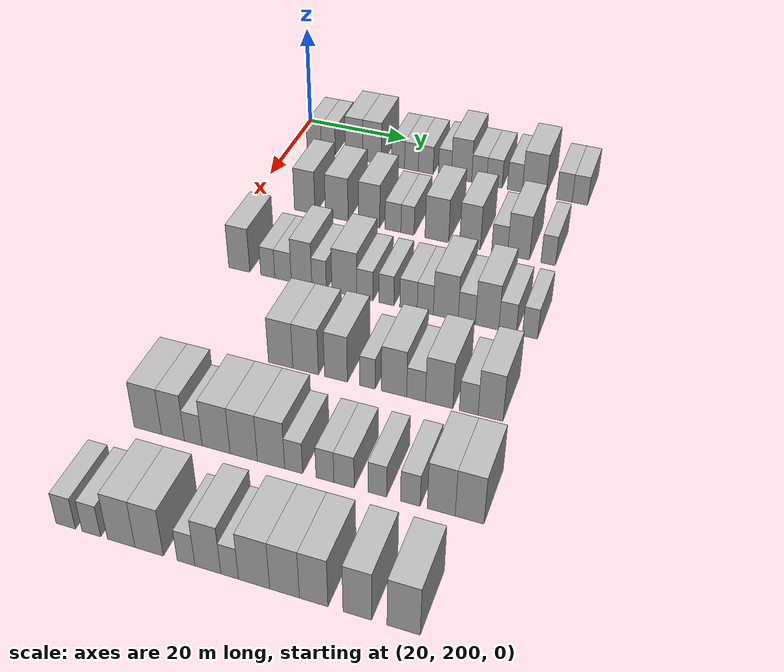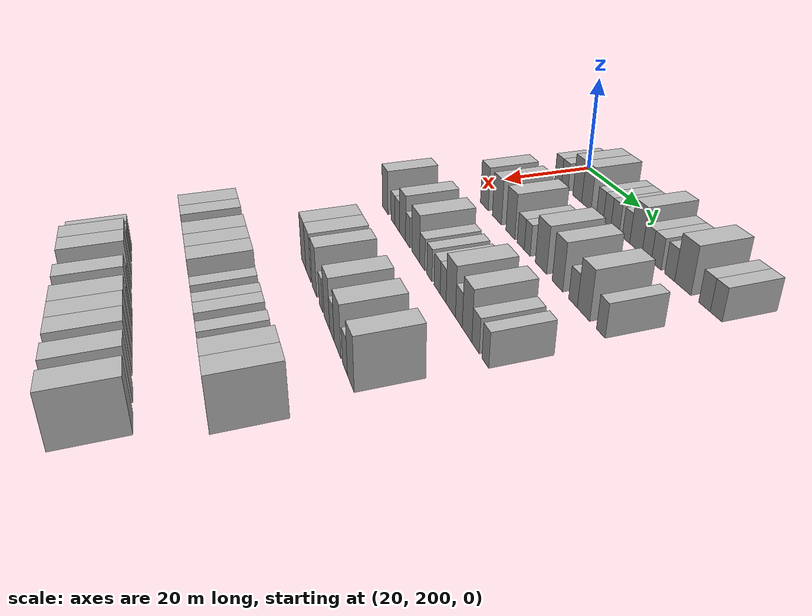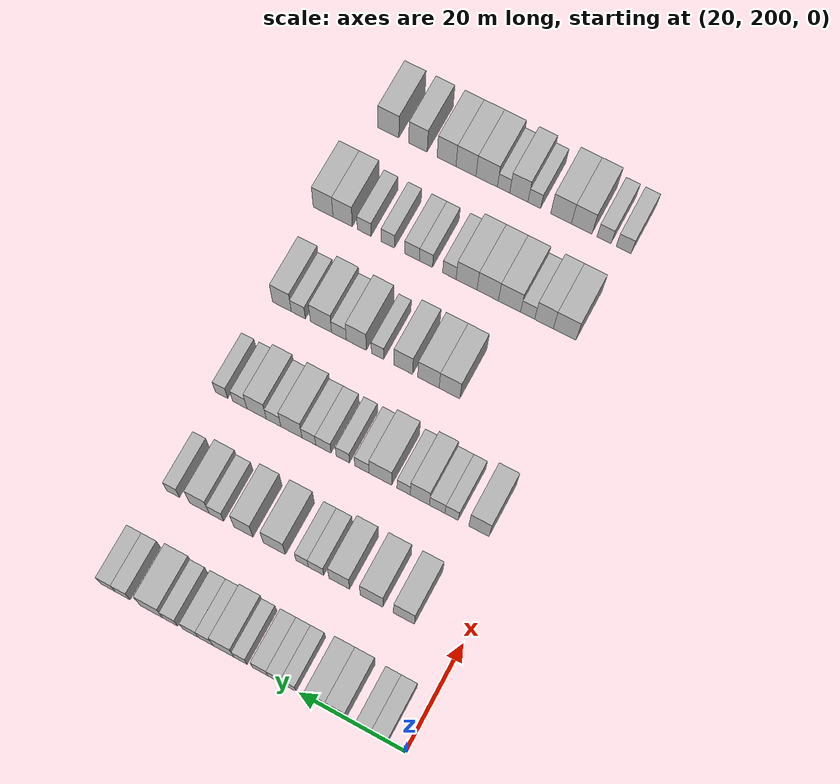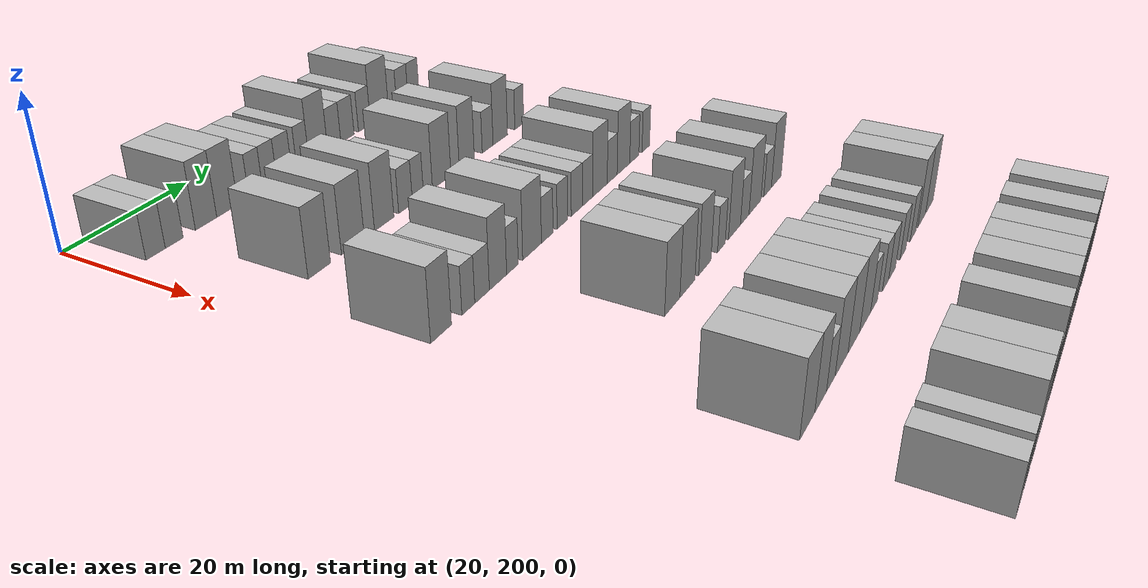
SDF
<sdf version="1.6">
 <world name="default">
  <model name="building_143">
   <static>1</static>
   <pose>25.0000 204.7831 0 0.000000 0.000000 0.000000</pose>
   <link name="link">
    <pose>0 0 3.00 0 0 0</pose>
    <collision name="collision"><geometry><box><size>10.0000 2.9914 6.0000</size></box></geometry></collision>
    <visual name="visual">
     <cast_shadows>0</cast_shadows>
     <geometry><box><size>10.0000 2.9914 6.0000</size></box></geometry>
     <material>
      <script>
       <uri>model://HANNAS_wall/materials/scripts</uri>
       <uri>model://HANNAS_wall/materials/textures</uri>
       <name>vrc/HANNAS_wall</name>
      </script>
     </material>
    </visual>
   </link>
  </model>
  <model name="building_144">
   <static>1</static>
   <pose>25.0000 207.7089 0 0.000000 0.000000 0.000000</pose>
   <link name="link">
    <pose>0 0 3.00 0 0 0</pose>
    <collision name="collision"><geometry><box><size>10.0000 2.8602 6.0000</size></box></geometry></collision>
    <visual name="visual">
     <cast_shadows>0</cast_shadows>
     <geometry><box><size>10.0000 2.8602 6.0000</size></box></geometry>
     <material>
      <script>
       <uri>model://HANNAS_wall/materials/scripts</uri>
       <uri>model://HANNAS_wall/materials/textures</uri>
       <name>vrc/HANNAS_wall</name>
      </script>
     </material>
    </visual>
   </link>
  </model>
  <model name="building_145">
   <static>1</static>
   <pose>25.0000 212.9392 0 0.000000 0.000000 0.000000</pose>
   <link name="link">
    <pose>0 0 4.50 0 0 0</pose>
    <collision name="collision"><geometry><box><size>10.0000 3.6005 9.0000</size></box></geometry></collision>
    <visual name="visual">
     <cast_shadows>0</cast_shadows>
     <geometry><box><size>10.0000 3.6005 9.0000</size></box></geometry>
     <material>
      <script>
       <uri>model://HANNAS_wall/materials/scripts</uri>
       <uri>model://HANNAS_wall/materials/textures</uri>
       <name>vrc/HANNAS_wall</name>
      </script>
     </material>
    </visual>
   </link>
  </model>
  <model name="building_146">
   <static>1</static>
   <pose>25.0000 216.6041 0 0.000000 0.000000 0.000000</pose>
   <link name="link">
    <pose>0 0 4.50 0 0 0</pose>
    <collision name="collision"><geometry><box><size>10.0000 3.7292 9.0000</size></box></geometry></collision>
    <visual name="visual">
     <cast_shadows>0</cast_shadows>
     <geometry><box><size>10.0000 3.7292 9.0000</size></box></geometry>
     <material>
      <script>
       <uri>model://HANNAS_wall/materials/scripts</uri>
       <uri>model://HANNAS_wall/materials/textures</uri>
       <name>vrc/HANNAS_wall</name>
      </script>
     </material>
    </visual>
   </link>
  </model>
  <model name="building_147">
   <static>1</static>
   <pose>25.0000 221.7571 0 0.000000 0.000000 0.000000</pose>
   <link name="link">
    <pose>0 0 3.00 0 0 0</pose>
    <collision name="collision"><geometry><box><size>10.0000 2.5768 6.0000</size></box></geometry></collision>
    <visual name="visual">
     <cast_shadows>0</cast_shadows>
     <geometry><box><size>10.0000 2.5768 6.0000</size></box></geometry>
     <material>
      <script>
       <uri>model://HANNAS_wall/materials/scripts</uri>
       <uri>model://HANNAS_wall/materials/textures</uri>
       <name>vrc/HANNAS_wall</name>
      </script>
     </material>
    </visual>
   </link>
  </model>
  <model name="building_148">
   <static>1</static>
   <pose>25.0000 224.4015 0 0.000000 0.000000 0.000000</pose>
   <link name="link">
    <pose>0 0 3.00 0 0 0</pose>
    <collision name="collision"><geometry><box><size>10.0000 2.7119 6.0000</size></box></geometry></collision>
    <visual name="visual">
     <cast_shadows>0</cast_shadows>
     <geometry><box><size>10.0000 2.7119 6.0000</size></box></geometry>
     <material>
      <script>
       <uri>model://HANNAS_wall/materials/scripts</uri>
       <uri>model://HANNAS_wall/materials/textures</uri>
       <name>vrc/HANNAS_wall</name>
      </script>
     </material>
    </visual>
   </link>
  </model>
  <model name="building_149">
   <static>1</static>
   <pose>25.0000 227.2264 0 0.000000 0.000000 0.000000</pose>
   <link name="link">
    <pose>0 0 3.00 0 0 0</pose>
    <collision name="collision"><geometry><box><size>10.0000 2.9379 6.0000</size></box></geometry></collision>
    <visual name="visual">
     <cast_shadows>0</cast_shadows>
     <geometry><box><size>10.0000 2.9379 6.0000</size></box></geometry>
     <material>
      <script>
       <uri>model://HANNAS_wall/materials/scripts</uri>
       <uri>model://HANNAS_wall/materials/textures</uri>
       <name>vrc/HANNAS_wall</name>
      </script>
     </material>
    </visual>
   </link>
  </model>
  <model name="building_150">
   <static>1</static>
   <pose>25.0000 230.9472 0 0.000000 0.000000 0.000000</pose>
   <link name="link">
    <pose>0 0 3.00 0 0 0</pose>
    <collision name="collision"><geometry><box><size>10.0000 2.5038 6.0000</size></box></geometry></collision>
    <visual name="visual">
     <cast_shadows>0</cast_shadows>
     <geometry><box><size>10.0000 2.5038 6.0000</size></box></geometry>
     <material>
      <script>
       <uri>model://HANNAS_wall/materials/scripts</uri>
       <uri>model://HANNAS_wall/materials/textures</uri>
       <name>vrc/HANNAS_wall</name>
      </script>
     </material>
    </visual>
   </link>
  </model>
  <model name="building_151">
   <static>1</static>
   <pose>25.0000 234.1656 0 0.000000 0.000000 0.000000</pose>
   <link name="link">
    <pose>0 0 4.50 0 0 0</pose>
    <collision name="collision"><geometry><box><size>10.0000 3.9331 9.0000</size></box></geometry></collision>
    <visual name="visual">
     <cast_shadows>0</cast_shadows>
     <geometry><box><size>10.0000 3.9331 9.0000</size></box></geometry>
     <material>
      <script>
       <uri>model://HANNAS_wall/materials/scripts</uri>
       <uri>model://HANNAS_wall/materials/textures</uri>
       <name>vrc/HANNAS_wall</name>
      </script>
     </material>
    </visual>
   </link>
  </model>
  <model name="building_152">
   <static>1</static>
   <pose>25.0000 237.5633 0 0.000000 0.000000 0.000000</pose>
   <link name="link">
    <pose>0 0 3.00 0 0 0</pose>
    <collision name="collision"><geometry><box><size>10.0000 2.8623 6.0000</size></box></geometry></collision>
    <visual name="visual">
     <cast_shadows>0</cast_shadows>
     <geometry><box><size>10.0000 2.8623 6.0000</size></box></geometry>
     <material>
      <script>
       <uri>model://HANNAS_wall/materials/scripts</uri>
       <uri>model://HANNAS_wall/materials/textures</uri>
       <name>vrc/HANNAS_wall</name>
      </script>
     </material>
    </visual>
   </link>
  </model>
  <model name="building_153">
   <static>1</static>
   <pose>25.0000 240.4737 0 0.000000 0.000000 0.000000</pose>
   <link name="link">
    <pose>0 0 3.00 0 0 0</pose>
    <collision name="collision"><geometry><box><size>10.0000 2.9584 6.0000</size></box></geometry></collision>
    <visual name="visual">
     <cast_shadows>0</cast_shadows>
     <geometry><box><size>10.0000 2.9584 6.0000</size></box></geometry>
     <material>
      <script>
       <uri>model://HANNAS_wall/materials/scripts</uri>
       <uri>model://HANNAS_wall/materials/textures</uri>
       <name>vrc/HANNAS_wall</name>
      </script>
     </material>
    </visual>
   </link>
  </model>
  <model name="building_154">
   <static>1</static>
   <pose>25.0000 244.3500 0 0.000000 0.000000 0.000000</pose>
   <link name="link">
    <pose>0 0 3.00 0 0 0</pose>
    <collision name="collision"><geometry><box><size>10.0000 2.7941 6.0000</size></box></geometry></collision>
    <visual name="visual">
     <cast_shadows>0</cast_shadows>
     <geometry><box><size>10.0000 2.7941 6.0000</size></box></geometry>
     <material>
      <script>
       <uri>model://HANNAS_wall/materials/scripts</uri>
       <uri>model://HANNAS_wall/materials/textures</uri>
       <name>vrc/HANNAS_wall</name>
      </script>
     </material>
    </visual>
   </link>
  </model>
  <model name="building_155">
   <static>1</static>
   <pose>25.0000 247.9475 0 0.000000 0.000000 0.000000</pose>
   <link name="link">
    <pose>0 0 4.50 0 0 0</pose>
    <collision name="collision"><geometry><box><size>10.0000 4.4011 9.0000</size></box></geometry></collision>
    <visual name="visual">
     <cast_shadows>0</cast_shadows>
     <geometry><box><size>10.0000 4.4011 9.0000</size></box></geometry>
     <material>
      <script>
       <uri>model://HANNAS_wall/materials/scripts</uri>
       <uri>model://HANNAS_wall/materials/textures</uri>
       <name>vrc/HANNAS_wall</name>
      </script>
     </material>
    </visual>
   </link>
  </model>
  <model name="building_156">
   <static>1</static>
   <pose>25.0000 253.5833 0 0.000000 0.000000 0.000000</pose>
   <link name="link">
    <pose>0 0 3.00 0 0 0</pose>
    <collision name="collision"><geometry><box><size>10.0000 2.8704 6.0000</size></box></geometry></collision>
    <visual name="visual">
     <cast_shadows>0</cast_shadows>
     <geometry><box><size>10.0000 2.8704 6.0000</size></box></geometry>
     <material>
      <script>
       <uri>model://HANNAS_wall/materials/scripts</uri>
       <uri>model://HANNAS_wall/materials/textures</uri>
       <name>vrc/HANNAS_wall</name>
      </script>
     </material>
    </visual>
   </link>
  </model>
  <model name="building_157">
   <static>1</static>
   <pose>25.0000 256.4415 0 0.000000 0.000000 0.000000</pose>
   <link name="link">
    <pose>0 0 3.00 0 0 0</pose>
    <collision name="collision"><geometry><box><size>10.0000 2.8461 6.0000</size></box></geometry></collision>
    <visual name="visual">
     <cast_shadows>0</cast_shadows>
     <geometry><box><size>10.0000 2.8461 6.0000</size></box></geometry>
     <material>
      <script>
       <uri>model://HANNAS_wall/materials/scripts</uri>
       <uri>model://HANNAS_wall/materials/textures</uri>
       <name>vrc/HANNAS_wall</name>
      </script>
     </material>
    </visual>
   </link>
  </model>
  <model name="building_310">
   <static>1</static>
   <pose>44.0000 210.5807 0 0.000000 0.000000 0.000000</pose>
   <link name="link">
    <pose>0 0 4.50 0 0 0</pose>
    <collision name="collision"><geometry><box><size>10.0000 3.9617 9.0000</size></box></geometry></collision>
    <visual name="visual">
     <cast_shadows>0</cast_shadows>
     <geometry><box><size>10.0000 3.9617 9.0000</size></box></geometry>
     <material>
      <script>
       <uri>model://HANNAS_wall/materials/scripts</uri>
       <uri>model://HANNAS_wall/materials/textures</uri>
       <name>vrc/HANNAS_wall</name>
      </script>
     </material>
    </visual>
   </link>
  </model>
  <model name="building_311">
   <static>1</static>
   <pose>44.0000 216.7143 0 0.000000 0.000000 0.000000</pose>
   <link name="link">
    <pose>0 0 4.50 0 0 0</pose>
    <collision name="collision"><geometry><box><size>10.0000 4.3055 9.0000</size></box></geometry></collision>
    <visual name="visual">
     <cast_shadows>0</cast_shadows>
     <geometry><box><size>10.0000 4.3055 9.0000</size></box></geometry>
     <material>
      <script>
       <uri>model://HANNAS_wall/materials/scripts</uri>
       <uri>model://HANNAS_wall/materials/textures</uri>
       <name>vrc/HANNAS_wall</name>
      </script>
     </material>
    </visual>
   </link>
  </model>
  <model name="building_312">
   <static>1</static>
   <pose>44.0000 222.8371 0 0.000000 0.000000 0.000000</pose>
   <link name="link">
    <pose>0 0 4.50 0 0 0</pose>
    <collision name="collision"><geometry><box><size>10.0000 3.9399 9.0000</size></box></geometry></collision>
    <visual name="visual">
     <cast_shadows>0</cast_shadows>
     <geometry><box><size>10.0000 3.9399 9.0000</size></box></geometry>
     <material>
      <script>
       <uri>model://HANNAS_wall/materials/scripts</uri>
       <uri>model://HANNAS_wall/materials/textures</uri>
       <name>vrc/HANNAS_wall</name>
      </script>
     </material>
    </visual>
   </link>
  </model>
  <model name="building_313">
   <static>1</static>
   <pose>44.0000 227.2735 0 0.000000 0.000000 0.000000</pose>
   <link name="link">
    <pose>0 0 3.00 0 0 0</pose>
    <collision name="collision"><geometry><box><size>10.0000 2.9330 6.0000</size></box></geometry></collision>
    <visual name="visual">
     <cast_shadows>0</cast_shadows>
     <geometry><box><size>10.0000 2.9330 6.0000</size></box></geometry>
     <material>
      <script>
       <uri>model://HANNAS_wall/materials/scripts</uri>
       <uri>model://HANNAS_wall/materials/textures</uri>
       <name>vrc/HANNAS_wall</name>
      </script>
     </material>
    </visual>
   </link>
  </model>
  <model name="building_314">
   <static>1</static>
   <pose>44.0000 229.9479 0 0.000000 0.000000 0.000000</pose>
   <link name="link">
    <pose>0 0 3.00 0 0 0</pose>
    <collision name="collision"><geometry><box><size>10.0000 2.4158 6.0000</size></box></geometry></collision>
    <visual name="visual">
     <cast_shadows>0</cast_shadows>
     <geometry><box><size>10.0000 2.4158 6.0000</size></box></geometry>
     <material>
      <script>
       <uri>model://HANNAS_wall/materials/scripts</uri>
       <uri>model://HANNAS_wall/materials/textures</uri>
       <name>vrc/HANNAS_wall</name>
      </script>
     </material>
    </visual>
   </link>
  </model>
  <model name="building_315">
   <static>1</static>
   <pose>44.0000 235.2914 0 0.000000 0.000000 0.000000</pose>
   <link name="link">
    <pose>0 0 4.50 0 0 0</pose>
    <collision name="collision"><geometry><box><size>10.0000 4.2712 9.0000</size></box></geometry></collision>
    <visual name="visual">
     <cast_shadows>0</cast_shadows>
     <geometry><box><size>10.0000 4.2712 9.0000</size></box></geometry>
     <material>
      <script>
       <uri>model://HANNAS_wall/materials/scripts</uri>
       <uri>model://HANNAS_wall/materials/textures</uri>
       <name>vrc/HANNAS_wall</name>
      </script>
     </material>
    </visual>
   </link>
  </model>
  <model name="building_316">
   <static>1</static>
   <pose>44.0000 241.2752 0 0.000000 0.000000 0.000000</pose>
   <link name="link">
    <pose>0 0 4.50 0 0 0</pose>
    <collision name="collision"><geometry><box><size>10.0000 3.6962 9.0000</size></box></geometry></collision>
    <visual name="visual">
     <cast_shadows>0</cast_shadows>
     <geometry><box><size>10.0000 3.6962 9.0000</size></box></geometry>
     <material>
      <script>
       <uri>model://HANNAS_wall/materials/scripts</uri>
       <uri>model://HANNAS_wall/materials/textures</uri>
       <name>vrc/HANNAS_wall</name>
      </script>
     </material>
    </visual>
   </link>
  </model>
  <model name="building_317">
   <static>1</static>
   <pose>44.0000 246.5233 0 0.000000 0.000000 0.000000</pose>
   <link name="link">
    <pose>0 0 3.00 0 0 0</pose>
    <collision name="collision"><geometry><box><size>10.0000 2.8000 6.0000</size></box></geometry></collision>
    <visual name="visual">
     <cast_shadows>0</cast_shadows>
     <geometry><box><size>10.0000 2.8000 6.0000</size></box></geometry>
     <material>
      <script>
       <uri>model://HANNAS_wall/materials/scripts</uri>
       <uri>model://HANNAS_wall/materials/textures</uri>
       <name>vrc/HANNAS_wall</name>
      </script>
     </material>
    </visual>
   </link>
  </model>
  <model name="building_318">
   <static>1</static>
   <pose>44.0000 249.8482 0 0.000000 0.000000 0.000000</pose>
   <link name="link">
    <pose>0 0 4.50 0 0 0</pose>
    <collision name="collision"><geometry><box><size>10.0000 3.8499 9.0000</size></box></geometry></collision>
    <visual name="visual">
     <cast_shadows>0</cast_shadows>
     <geometry><box><size>10.0000 3.8499 9.0000</size></box></geometry>
     <material>
      <script>
       <uri>model://HANNAS_wall/materials/scripts</uri>
       <uri>model://HANNAS_wall/materials/textures</uri>
       <name>vrc/HANNAS_wall</name>
      </script>
     </material>
    </visual>
   </link>
  </model>
  <model name="building_319">
   <static>1</static>
   <pose>44.0000 255.0269 0 0.000000 0.000000 0.000000</pose>
   <link name="link">
    <pose>0 0 3.00 0 0 0</pose>
    <collision name="collision"><geometry><box><size>10.0000 2.5075 6.0000</size></box></geometry></collision>
    <visual name="visual">
     <cast_shadows>0</cast_shadows>
     <geometry><box><size>10.0000 2.5075 6.0000</size></box></geometry>
     <material>
      <script>
       <uri>model://HANNAS_wall/materials/scripts</uri>
       <uri>model://HANNAS_wall/materials/textures</uri>
       <name>vrc/HANNAS_wall</name>
      </script>
     </material>
    </visual>
   </link>
  </model>
  <model name="building_477">
   <static>1</static>
   <pose>63.0000 206.4645 0 0.000000 0.000000 0.000000</pose>
   <link name="link">
    <pose>0 0 4.50 0 0 0</pose>
    <collision name="collision"><geometry><box><size>10.0000 3.8631 9.0000</size></box></geometry></collision>
    <visual name="visual">
     <cast_shadows>0</cast_shadows>
     <geometry><box><size>10.0000 3.8631 9.0000</size></box></geometry>
     <material>
      <script>
       <uri>model://HANNAS_wall/materials/scripts</uri>
       <uri>model://HANNAS_wall/materials/textures</uri>
       <name>vrc/HANNAS_wall</name>
      </script>
     </material>
    </visual>
   </link>
  </model>
  <model name="building_478">
   <static>1</static>
   <pose>63.0000 211.6756 0 0.000000 0.000000 0.000000</pose>
   <link name="link">
    <pose>0 0 3.00 0 0 0</pose>
    <collision name="collision"><geometry><box><size>10.0000 2.5592 6.0000</size></box></geometry></collision>
    <visual name="visual">
     <cast_shadows>0</cast_shadows>
     <geometry><box><size>10.0000 2.5592 6.0000</size></box></geometry>
     <material>
      <script>
       <uri>model://HANNAS_wall/materials/scripts</uri>
       <uri>model://HANNAS_wall/materials/textures</uri>
       <name>vrc/HANNAS_wall</name>
      </script>
     </material>
    </visual>
   </link>
  </model>
  <model name="building_479">
   <static>1</static>
   <pose>63.0000 214.4435 0 0.000000 0.000000 0.000000</pose>
   <link name="link">
    <pose>0 0 3.00 0 0 0</pose>
    <collision name="collision"><geometry><box><size>10.0000 2.9765 6.0000</size></box></geometry></collision>
    <visual name="visual">
     <cast_shadows>0</cast_shadows>
     <geometry><box><size>10.0000 2.9765 6.0000</size></box></geometry>
     <material>
      <script>
       <uri>model://HANNAS_wall/materials/scripts</uri>
       <uri>model://HANNAS_wall/materials/textures</uri>
       <name>vrc/HANNAS_wall</name>
      </script>
     </material>
    </visual>
   </link>
  </model>
  <model name="building_480">
   <static>1</static>
   <pose>63.0000 217.7690 0 0.000000 0.000000 0.000000</pose>
   <link name="link">
    <pose>0 0 4.50 0 0 0</pose>
    <collision name="collision"><geometry><box><size>10.0000 3.6745 9.0000</size></box></geometry></collision>
    <visual name="visual">
     <cast_shadows>0</cast_shadows>
     <geometry><box><size>10.0000 3.6745 9.0000</size></box></geometry>
     <material>
      <script>
       <uri>model://HANNAS_wall/materials/scripts</uri>
       <uri>model://HANNAS_wall/materials/textures</uri>
       <name>vrc/HANNAS_wall</name>
      </script>
     </material>
    </visual>
   </link>
  </model>
  <model name="building_481">
   <static>1</static>
   <pose>63.0000 220.8858 0 0.000000 0.000000 0.000000</pose>
   <link name="link">
    <pose>0 0 3.00 0 0 0</pose>
    <collision name="collision"><geometry><box><size>10.0000 2.5591 6.0000</size></box></geometry></collision>
    <visual name="visual">
     <cast_shadows>0</cast_shadows>
     <geometry><box><size>10.0000 2.5591 6.0000</size></box></geometry>
     <material>
      <script>
       <uri>model://HANNAS_wall/materials/scripts</uri>
       <uri>model://HANNAS_wall/materials/textures</uri>
       <name>vrc/HANNAS_wall</name>
      </script>
     </material>
    </visual>
   </link>
  </model>
  <model name="building_482">
   <static>1</static>
   <pose>63.0000 225.3421 0 0.000000 0.000000 0.000000</pose>
   <link name="link">
    <pose>0 0 4.50 0 0 0</pose>
    <collision name="collision"><geometry><box><size>10.0000 4.3535 9.0000</size></box></geometry></collision>
    <visual name="visual">
     <cast_shadows>0</cast_shadows>
     <geometry><box><size>10.0000 4.3535 9.0000</size></box></geometry>
     <material>
      <script>
       <uri>model://HANNAS_wall/materials/scripts</uri>
       <uri>model://HANNAS_wall/materials/textures</uri>
       <name>vrc/HANNAS_wall</name>
      </script>
     </material>
    </visual>
   </link>
  </model>
  <model name="building_483">
   <static>1</static>
   <pose>63.0000 228.9276 0 0.000000 0.000000 0.000000</pose>
   <link name="link">
    <pose>0 0 3.00 0 0 0</pose>
    <collision name="collision"><geometry><box><size>10.0000 2.8176 6.0000</size></box></geometry></collision>
    <visual name="visual">
     <cast_shadows>0</cast_shadows>
     <geometry><box><size>10.0000 2.8176 6.0000</size></box></geometry>
     <material>
      <script>
       <uri>model://HANNAS_wall/materials/scripts</uri>
       <uri>model://HANNAS_wall/materials/textures</uri>
       <name>vrc/HANNAS_wall</name>
      </script>
     </material>
    </visual>
   </link>
  </model>
  <model name="building_484">
   <static>1</static>
   <pose>63.0000 232.6369 0 0.000000 0.000000 0.000000</pose>
   <link name="link">
    <pose>0 0 3.00 0 0 0</pose>
    <collision name="collision"><geometry><box><size>10.0000 2.6011 6.0000</size></box></geometry></collision>
    <visual name="visual">
     <cast_shadows>0</cast_shadows>
     <geometry><box><size>10.0000 2.6011 6.0000</size></box></geometry>
     <material>
      <script>
       <uri>model://HANNAS_wall/materials/scripts</uri>
       <uri>model://HANNAS_wall/materials/textures</uri>
       <name>vrc/HANNAS_wall</name>
      </script>
     </material>
    </visual>
   </link>
  </model>
  <model name="building_485">
   <static>1</static>
   <pose>63.0000 236.4139 0 0.000000 0.000000 0.000000</pose>
   <link name="link">
    <pose>0 0 3.00 0 0 0</pose>
    <collision name="collision"><geometry><box><size>10.0000 2.9527 6.0000</size></box></geometry></collision>
    <visual name="visual">
     <cast_shadows>0</cast_shadows>
     <geometry><box><size>10.0000 2.9527 6.0000</size></box></geometry>
     <material>
      <script>
       <uri>model://HANNAS_wall/materials/scripts</uri>
       <uri>model://HANNAS_wall/materials/textures</uri>
       <name>vrc/HANNAS_wall</name>
      </script>
     </material>
    </visual>
   </link>
  </model>
  <model name="building_486">
   <static>1</static>
   <pose>63.0000 239.2537 0 0.000000 0.000000 0.000000</pose>
   <link name="link">
    <pose>0 0 3.00 0 0 0</pose>
    <collision name="collision"><geometry><box><size>10.0000 2.7270 6.0000</size></box></geometry></collision>
    <visual name="visual">
     <cast_shadows>0</cast_shadows>
     <geometry><box><size>10.0000 2.7270 6.0000</size></box></geometry>
     <material>
      <script>
       <uri>model://HANNAS_wall/materials/scripts</uri>
       <uri>model://HANNAS_wall/materials/textures</uri>
       <name>vrc/HANNAS_wall</name>
      </script>
     </material>
    </visual>
   </link>
  </model>
  <model name="building_487">
   <static>1</static>
   <pose>63.0000 242.6885 0 0.000000 0.000000 0.000000</pose>
   <link name="link">
    <pose>0 0 4.50 0 0 0</pose>
    <collision name="collision"><geometry><box><size>10.0000 4.1425 9.0000</size></box></geometry></collision>
    <visual name="visual">
     <cast_shadows>0</cast_shadows>
     <geometry><box><size>10.0000 4.1425 9.0000</size></box></geometry>
     <material>
      <script>
       <uri>model://HANNAS_wall/materials/scripts</uri>
       <uri>model://HANNAS_wall/materials/textures</uri>
       <name>vrc/HANNAS_wall</name>
      </script>
     </material>
    </visual>
   </link>
  </model>
  <model name="building_488">
   <static>1</static>
   <pose>63.0000 246.1956 0 0.000000 0.000000 0.000000</pose>
   <link name="link">
    <pose>0 0 3.00 0 0 0</pose>
    <collision name="collision"><geometry><box><size>10.0000 2.8716 6.0000</size></box></geometry></collision>
    <visual name="visual">
     <cast_shadows>0</cast_shadows>
     <geometry><box><size>10.0000 2.8716 6.0000</size></box></geometry>
     <material>
      <script>
       <uri>model://HANNAS_wall/materials/scripts</uri>
       <uri>model://HANNAS_wall/materials/textures</uri>
       <name>vrc/HANNAS_wall</name>
      </script>
     </material>
    </visual>
   </link>
  </model>
  <model name="building_489">
   <static>1</static>
   <pose>63.0000 249.5432 0 0.000000 0.000000 0.000000</pose>
   <link name="link">
    <pose>0 0 4.50 0 0 0</pose>
    <collision name="collision"><geometry><box><size>10.0000 3.8236 9.0000</size></box></geometry></collision>
    <visual name="visual">
     <cast_shadows>0</cast_shadows>
     <geometry><box><size>10.0000 3.8236 9.0000</size></box></geometry>
     <material>
      <script>
       <uri>model://HANNAS_wall/materials/scripts</uri>
       <uri>model://HANNAS_wall/materials/textures</uri>
       <name>vrc/HANNAS_wall</name>
      </script>
     </material>
    </visual>
   </link>
  </model>
  <model name="building_490">
   <static>1</static>
   <pose>63.0000 252.8727 0 0.000000 0.000000 0.000000</pose>
   <link name="link">
    <pose>0 0 3.00 0 0 0</pose>
    <collision name="collision"><geometry><box><size>10.0000 2.8355 6.0000</size></box></geometry></collision>
    <visual name="visual">
     <cast_shadows>0</cast_shadows>
     <geometry><box><size>10.0000 2.8355 6.0000</size></box></geometry>
     <material>
      <script>
       <uri>model://HANNAS_wall/materials/scripts</uri>
       <uri>model://HANNAS_wall/materials/textures</uri>
       <name>vrc/HANNAS_wall</name>
      </script>
     </material>
    </visual>
   </link>
  </model>
  <model name="building_491">
   <static>1</static>
   <pose>63.0000 256.5139 0 0.000000 0.000000 0.000000</pose>
   <link name="link">
    <pose>0 0 3.00 0 0 0</pose>
    <collision name="collision"><geometry><box><size>10.0000 2.4469 6.0000</size></box></geometry></collision>
    <visual name="visual">
     <cast_shadows>0</cast_shadows>
     <geometry><box><size>10.0000 2.4469 6.0000</size></box></geometry>
     <material>
      <script>
       <uri>model://HANNAS_wall/materials/scripts</uri>
       <uri>model://HANNAS_wall/materials/textures</uri>
       <name>vrc/HANNAS_wall</name>
      </script>
     </material>
    </visual>
   </link>
  </model>
  <model name="building_658">
   <static>1</static>
   <pose>82.0000 222.1262 0 0.000000 0.000000 0.000000</pose>
   <link name="link">
    <pose>0 0 4.50 0 0 0</pose>
    <collision name="collision"><geometry><box><size>10.0000 4.0502 9.0000</size></box></geometry></collision>
    <visual name="visual">
     <cast_shadows>0</cast_shadows>
     <geometry><box><size>10.0000 4.0502 9.0000</size></box></geometry>
     <material>
      <script>
       <uri>model://HANNAS_wall/materials/scripts</uri>
       <uri>model://HANNAS_wall/materials/textures</uri>
       <name>vrc/HANNAS_wall</name>
      </script>
     </material>
    </visual>
   </link>
  </model>
  <model name="building_659">
   <static>1</static>
   <pose>82.0000 226.2478 0 0.000000 0.000000 0.000000</pose>
   <link name="link">
    <pose>0 0 4.50 0 0 0</pose>
    <collision name="collision"><geometry><box><size>10.0000 4.1930 9.0000</size></box></geometry></collision>
    <visual name="visual">
     <cast_shadows>0</cast_shadows>
     <geometry><box><size>10.0000 4.1930 9.0000</size></box></geometry>
     <material>
      <script>
       <uri>model://HANNAS_wall/materials/scripts</uri>
       <uri>model://HANNAS_wall/materials/textures</uri>
       <name>vrc/HANNAS_wall</name>
      </script>
     </material>
    </visual>
   </link>
  </model>
  <model name="building_660">
   <static>1</static>
   <pose>82.0000 231.1861 0 0.000000 0.000000 0.000000</pose>
   <link name="link">
    <pose>0 0 4.50 0 0 0</pose>
    <collision name="collision"><geometry><box><size>10.0000 3.6836 9.0000</size></box></geometry></collision>
    <visual name="visual">
     <cast_shadows>0</cast_shadows>
     <geometry><box><size>10.0000 3.6836 9.0000</size></box></geometry>
     <material>
      <script>
       <uri>model://HANNAS_wall/materials/scripts</uri>
       <uri>model://HANNAS_wall/materials/textures</uri>
       <name>vrc/HANNAS_wall</name>
      </script>
     </material>
    </visual>
   </link>
  </model>
  <model name="building_661">
   <static>1</static>
   <pose>82.0000 236.2423 0 0.000000 0.000000 0.000000</pose>
   <link name="link">
    <pose>0 0 3.00 0 0 0</pose>
    <collision name="collision"><geometry><box><size>10.0000 2.4288 6.0000</size></box></geometry></collision>
    <visual name="visual">
     <cast_shadows>0</cast_shadows>
     <geometry><box><size>10.0000 2.4288 6.0000</size></box></geometry>
     <material>
      <script>
       <uri>model://HANNAS_wall/materials/scripts</uri>
       <uri>model://HANNAS_wall/materials/textures</uri>
       <name>vrc/HANNAS_wall</name>
      </script>
     </material>
    </visual>
   </link>
  </model>
  <model name="building_662">
   <static>1</static>
   <pose>82.0000 240.4374 0 0.000000 0.000000 0.000000</pose>
   <link name="link">
    <pose>0 0 4.50 0 0 0</pose>
    <collision name="collision"><geometry><box><size>10.0000 3.9615 9.0000</size></box></geometry></collision>
    <visual name="visual">
     <cast_shadows>0</cast_shadows>
     <geometry><box><size>10.0000 3.9615 9.0000</size></box></geometry>
     <material>
      <script>
       <uri>model://HANNAS_wall/materials/scripts</uri>
       <uri>model://HANNAS_wall/materials/textures</uri>
       <name>vrc/HANNAS_wall</name>
      </script>
     </material>
    </visual>
   </link>
  </model>
  <model name="building_663">
   <static>1</static>
   <pose>82.0000 243.8828 0 0.000000 0.000000 0.000000</pose>
   <link name="link">
    <pose>0 0 3.00 0 0 0</pose>
    <collision name="collision"><geometry><box><size>10.0000 2.9294 6.0000</size></box></geometry></collision>
    <visual name="visual">
     <cast_shadows>0</cast_shadows>
     <geometry><box><size>10.0000 2.9294 6.0000</size></box></geometry>
     <material>
      <script>
       <uri>model://HANNAS_wall/materials/scripts</uri>
       <uri>model://HANNAS_wall/materials/textures</uri>
       <name>vrc/HANNAS_wall</name>
      </script>
     </material>
    </visual>
   </link>
  </model>
  <model name="building_664">
   <static>1</static>
   <pose>82.0000 247.4565 0 0.000000 0.000000 0.000000</pose>
   <link name="link">
    <pose>0 0 4.50 0 0 0</pose>
    <collision name="collision"><geometry><box><size>10.0000 4.2179 9.0000</size></box></geometry></collision>
    <visual name="visual">
     <cast_shadows>0</cast_shadows>
     <geometry><box><size>10.0000 4.2179 9.0000</size></box></geometry>
     <material>
      <script>
       <uri>model://HANNAS_wall/materials/scripts</uri>
       <uri>model://HANNAS_wall/materials/textures</uri>
       <name>vrc/HANNAS_wall</name>
      </script>
     </material>
    </visual>
   </link>
  </model>
  <model name="building_665">
   <static>1</static>
   <pose>82.0000 251.9847 0 0.000000 0.000000 0.000000</pose>
   <link name="link">
    <pose>0 0 3.00 0 0 0</pose>
    <collision name="collision"><geometry><box><size>10.0000 2.8387 6.0000</size></box></geometry></collision>
    <visual name="visual">
     <cast_shadows>0</cast_shadows>
     <geometry><box><size>10.0000 2.8387 6.0000</size></box></geometry>
     <material>
      <script>
       <uri>model://HANNAS_wall/materials/scripts</uri>
       <uri>model://HANNAS_wall/materials/textures</uri>
       <name>vrc/HANNAS_wall</name>
      </script>
     </material>
    </visual>
   </link>
  </model>
  <model name="building_666">
   <static>1</static>
   <pose>82.0000 255.2847 0 0.000000 0.000000 0.000000</pose>
   <link name="link">
    <pose>0 0 4.50 0 0 0</pose>
    <collision name="collision"><geometry><box><size>10.0000 3.7613 9.0000</size></box></geometry></collision>
    <visual name="visual">
     <cast_shadows>0</cast_shadows>
     <geometry><box><size>10.0000 3.7613 9.0000</size></box></geometry>
     <material>
      <script>
       <uri>model://HANNAS_wall/materials/scripts</uri>
       <uri>model://HANNAS_wall/materials/textures</uri>
       <name>vrc/HANNAS_wall</name>
      </script>
     </material>
    </visual>
   </link>
  </model>
  <model name="building_827">
   <static>1</static>
   <pose>101.0000 209.4870 0 0.000000 0.000000 0.000000</pose>
   <link name="link">
    <pose>0 0 4.50 0 0 0</pose>
    <collision name="collision"><geometry><box><size>10.0000 4.4183 9.0000</size></box></geometry></collision>
    <visual name="visual">
     <cast_shadows>0</cast_shadows>
     <geometry><box><size>10.0000 4.4183 9.0000</size></box></geometry>
     <material>
      <script>
       <uri>model://HANNAS_wall/materials/scripts</uri>
       <uri>model://HANNAS_wall/materials/textures</uri>
       <name>vrc/HANNAS_wall</name>
      </script>
     </material>
    </visual>
   </link>
  </model>
  <model name="building_828">
   <static>1</static>
   <pose>101.0000 213.5177 0 0.000000 0.000000 0.000000</pose>
   <link name="link">
    <pose>0 0 4.50 0 0 0</pose>
    <collision name="collision"><geometry><box><size>10.0000 3.6430 9.0000</size></box></geometry></collision>
    <visual name="visual">
     <cast_shadows>0</cast_shadows>
     <geometry><box><size>10.0000 3.6430 9.0000</size></box></geometry>
     <material>
      <script>
       <uri>model://HANNAS_wall/materials/scripts</uri>
       <uri>model://HANNAS_wall/materials/textures</uri>
       <name>vrc/HANNAS_wall</name>
      </script>
     </material>
    </visual>
   </link>
  </model>
  <model name="building_829">
   <static>1</static>
   <pose>101.0000 216.7320 0 0.000000 0.000000 0.000000</pose>
   <link name="link">
    <pose>0 0 3.00 0 0 0</pose>
    <collision name="collision"><geometry><box><size>10.0000 2.7856 6.0000</size></box></geometry></collision>
    <visual name="visual">
     <cast_shadows>0</cast_shadows>
     <geometry><box><size>10.0000 2.7856 6.0000</size></box></geometry>
     <material>
      <script>
       <uri>model://HANNAS_wall/materials/scripts</uri>
       <uri>model://HANNAS_wall/materials/textures</uri>
       <name>vrc/HANNAS_wall</name>
      </script>
     </material>
    </visual>
   </link>
  </model>
  <model name="building_830">
   <static>1</static>
   <pose>101.0000 220.3071 0 0.000000 0.000000 0.000000</pose>
   <link name="link">
    <pose>0 0 4.50 0 0 0</pose>
    <collision name="collision"><geometry><box><size>10.0000 4.3645 9.0000</size></box></geometry></collision>
    <visual name="visual">
     <cast_shadows>0</cast_shadows>
     <geometry><box><size>10.0000 4.3645 9.0000</size></box></geometry>
     <material>
      <script>
       <uri>model://HANNAS_wall/materials/scripts</uri>
       <uri>model://HANNAS_wall/materials/textures</uri>
       <name>vrc/HANNAS_wall</name>
      </script>
     </material>
    </visual>
   </link>
  </model>
  <model name="building_831">
   <static>1</static>
   <pose>101.0000 224.6023 0 0.000000 0.000000 0.000000</pose>
   <link name="link">
    <pose>0 0 4.50 0 0 0</pose>
    <collision name="collision"><geometry><box><size>10.0000 4.2260 9.0000</size></box></geometry></collision>
    <visual name="visual">
     <cast_shadows>0</cast_shadows>
     <geometry><box><size>10.0000 4.2260 9.0000</size></box></geometry>
     <material>
      <script>
       <uri>model://HANNAS_wall/materials/scripts</uri>
       <uri>model://HANNAS_wall/materials/textures</uri>
       <name>vrc/HANNAS_wall</name>
      </script>
     </material>
    </visual>
   </link>
  </model>
  <model name="building_832">
   <static>1</static>
   <pose>101.0000 228.7912 0 0.000000 0.000000 0.000000</pose>
   <link name="link">
    <pose>0 0 4.50 0 0 0</pose>
    <collision name="collision"><geometry><box><size>10.0000 4.1518 9.0000</size></box></geometry></collision>
    <visual name="visual">
     <cast_shadows>0</cast_shadows>
     <geometry><box><size>10.0000 4.1518 9.0000</size></box></geometry>
     <material>
      <script>
       <uri>model://HANNAS_wall/materials/scripts</uri>
       <uri>model://HANNAS_wall/materials/textures</uri>
       <name>vrc/HANNAS_wall</name>
      </script>
     </material>
    </visual>
   </link>
  </model>
  <model name="building_833">
   <static>1</static>
   <pose>101.0000 232.2082 0 0.000000 0.000000 0.000000</pose>
   <link name="link">
    <pose>0 0 3.00 0 0 0</pose>
    <collision name="collision"><geometry><box><size>10.0000 2.6821 6.0000</size></box></geometry></collision>
    <visual name="visual">
     <cast_shadows>0</cast_shadows>
     <geometry><box><size>10.0000 2.6821 6.0000</size></box></geometry>
     <material>
      <script>
       <uri>model://HANNAS_wall/materials/scripts</uri>
       <uri>model://HANNAS_wall/materials/textures</uri>
       <name>vrc/HANNAS_wall</name>
      </script>
     </material>
    </visual>
   </link>
  </model>
  <model name="building_834">
   <static>1</static>
   <pose>101.0000 236.8716 0 0.000000 0.000000 0.000000</pose>
   <link name="link">
    <pose>0 0 3.00 0 0 0</pose>
    <collision name="collision"><geometry><box><size>10.0000 2.6446 6.0000</size></box></geometry></collision>
    <visual name="visual">
     <cast_shadows>0</cast_shadows>
     <geometry><box><size>10.0000 2.6446 6.0000</size></box></geometry>
     <material>
      <script>
       <uri>model://HANNAS_wall/materials/scripts</uri>
       <uri>model://HANNAS_wall/materials/textures</uri>
       <name>vrc/HANNAS_wall</name>
      </script>
     </material>
    </visual>
   </link>
  </model>
  <model name="building_835">
   <static>1</static>
   <pose>101.0000 239.6796 0 0.000000 0.000000 0.000000</pose>
   <link name="link">
    <pose>0 0 3.00 0 0 0</pose>
    <collision name="collision"><geometry><box><size>10.0000 2.9716 6.0000</size></box></geometry></collision>
    <visual name="visual">
     <cast_shadows>0</cast_shadows>
     <geometry><box><size>10.0000 2.9716 6.0000</size></box></geometry>
     <material>
      <script>
       <uri>model://HANNAS_wall/materials/scripts</uri>
       <uri>model://HANNAS_wall/materials/textures</uri>
       <name>vrc/HANNAS_wall</name>
      </script>
     </material>
    </visual>
   </link>
  </model>
  <model name="building_836">
   <static>1</static>
   <pose>101.0000 244.5154 0 0.000000 0.000000 0.000000</pose>
   <link name="link">
    <pose>0 0 3.00 0 0 0</pose>
    <collision name="collision"><geometry><box><size>10.0000 2.6999 6.0000</size></box></geometry></collision>
    <visual name="visual">
     <cast_shadows>0</cast_shadows>
     <geometry><box><size>10.0000 2.6999 6.0000</size></box></geometry>
     <material>
      <script>
       <uri>model://HANNAS_wall/materials/scripts</uri>
       <uri>model://HANNAS_wall/materials/textures</uri>
       <name>vrc/HANNAS_wall</name>
      </script>
     </material>
    </visual>
   </link>
  </model>
  <model name="building_837">
   <static>1</static>
   <pose>101.0000 249.2640 0 0.000000 0.000000 0.000000</pose>
   <link name="link">
    <pose>0 0 3.00 0 0 0</pose>
    <collision name="collision"><geometry><box><size>10.0000 2.7974 6.0000</size></box></geometry></collision>
    <visual name="visual">
     <cast_shadows>0</cast_shadows>
     <geometry><box><size>10.0000 2.7974 6.0000</size></box></geometry>
     <material>
      <script>
       <uri>model://HANNAS_wall/materials/scripts</uri>
       <uri>model://HANNAS_wall/materials/textures</uri>
       <name>vrc/HANNAS_wall</name>
      </script>
     </material>
    </visual>
   </link>
  </model>
  <model name="building_838">
   <static>1</static>
   <pose>101.0000 253.6208 0 0.000000 0.000000 0.000000</pose>
   <link name="link">
    <pose>0 0 4.50 0 0 0</pose>
    <collision name="collision"><geometry><box><size>10.0000 3.9161 9.0000</size></box></geometry></collision>
    <visual name="visual">
     <cast_shadows>0</cast_shadows>
     <geometry><box><size>10.0000 3.9161 9.0000</size></box></geometry>
     <material>
      <script>
       <uri>model://HANNAS_wall/materials/scripts</uri>
       <uri>model://HANNAS_wall/materials/textures</uri>
       <name>vrc/HANNAS_wall</name>
      </script>
     </material>
    </visual>
   </link>
  </model>
  <model name="building_839">
   <static>1</static>
   <pose>101.0000 257.5781 0 0.000000 0.000000 0.000000</pose>
   <link name="link">
    <pose>0 0 4.50 0 0 0</pose>
    <collision name="collision"><geometry><box><size>10.0000 3.9986 9.0000</size></box></geometry></collision>
    <visual name="visual">
     <cast_shadows>0</cast_shadows>
     <geometry><box><size>10.0000 3.9986 9.0000</size></box></geometry>
     <material>
      <script>
       <uri>model://HANNAS_wall/materials/scripts</uri>
       <uri>model://HANNAS_wall/materials/textures</uri>
       <name>vrc/HANNAS_wall</name>
      </script>
     </material>
    </visual>
   </link>
  </model>
  <model name="building_999">
   <static>1</static>
   <pose>120.0000 207.4089 0 0.000000 0.000000 0.000000</pose>
   <link name="link">
    <pose>0 0 3.00 0 0 0</pose>
    <collision name="collision"><geometry><box><size>10.0000 2.9380 6.0000</size></box></geometry></collision>
    <visual name="visual">
     <cast_shadows>0</cast_shadows>
     <geometry><box><size>10.0000 2.9380 6.0000</size></box></geometry>
     <material>
      <script>
       <uri>model://HANNAS_wall/materials/scripts</uri>
       <uri>model://HANNAS_wall/materials/textures</uri>
       <name>vrc/HANNAS_wall</name>
      </script>
     </material>
    </visual>
   </link>
  </model>
  <model name="building_1000">
   <static>1</static>
   <pose>120.0000 211.2736 0 0.000000 0.000000 0.000000</pose>
   <link name="link">
    <pose>0 0 3.00 0 0 0</pose>
    <collision name="collision"><geometry><box><size>10.0000 2.7913 6.0000</size></box></geometry></collision>
    <visual name="visual">
     <cast_shadows>0</cast_shadows>
     <geometry><box><size>10.0000 2.7913 6.0000</size></box></geometry>
     <material>
      <script>
       <uri>model://HANNAS_wall/materials/scripts</uri>
       <uri>model://HANNAS_wall/materials/textures</uri>
       <name>vrc/HANNAS_wall</name>
      </script>
     </material>
    </visual>
   </link>
  </model>
  <model name="building_1001">
   <static>1</static>
   <pose>120.0000 215.7068 0 0.000000 0.000000 0.000000</pose>
   <link name="link">
    <pose>0 0 4.50 0 0 0</pose>
    <collision name="collision"><geometry><box><size>10.0000 4.0752 9.0000</size></box></geometry></collision>
    <visual name="visual">
     <cast_shadows>0</cast_shadows>
     <geometry><box><size>10.0000 4.0752 9.0000</size></box></geometry>
     <material>
      <script>
       <uri>model://HANNAS_wall/materials/scripts</uri>
       <uri>model://HANNAS_wall/materials/textures</uri>
       <name>vrc/HANNAS_wall</name>
      </script>
     </material>
    </visual>
   </link>
  </model>
  <model name="building_1002">
   <static>1</static>
   <pose>120.0000 219.8094 0 0.000000 0.000000 0.000000</pose>
   <link name="link">
    <pose>0 0 4.50 0 0 0</pose>
    <collision name="collision"><geometry><box><size>10.0000 4.1300 9.0000</size></box></geometry></collision>
    <visual name="visual">
     <cast_shadows>0</cast_shadows>
     <geometry><box><size>10.0000 4.1300 9.0000</size></box></geometry>
     <material>
      <script>
       <uri>model://HANNAS_wall/materials/scripts</uri>
       <uri>model://HANNAS_wall/materials/textures</uri>
       <name>vrc/HANNAS_wall</name>
      </script>
     </material>
    </visual>
   </link>
  </model>
  <model name="building_1003">
   <static>1</static>
   <pose>120.0000 225.1454 0 0.000000 0.000000 0.000000</pose>
   <link name="link">
    <pose>0 0 3.00 0 0 0</pose>
    <collision name="collision"><geometry><box><size>10.0000 2.5421 6.0000</size></box></geometry></collision>
    <visual name="visual">
     <cast_shadows>0</cast_shadows>
     <geometry><box><size>10.0000 2.5421 6.0000</size></box></geometry>
     <material>
      <script>
       <uri>model://HANNAS_wall/materials/scripts</uri>
       <uri>model://HANNAS_wall/materials/textures</uri>
       <name>vrc/HANNAS_wall</name>
      </script>
     </material>
    </visual>
   </link>
  </model>
  <model name="building_1004">
   <static>1</static>
   <pose>120.0000 228.2437 0 0.000000 0.000000 0.000000</pose>
   <link name="link">
    <pose>0 0 4.50 0 0 0</pose>
    <collision name="collision"><geometry><box><size>10.0000 3.6546 9.0000</size></box></geometry></collision>
    <visual name="visual">
     <cast_shadows>0</cast_shadows>
     <geometry><box><size>10.0000 3.6546 9.0000</size></box></geometry>
     <material>
      <script>
       <uri>model://HANNAS_wall/materials/scripts</uri>
       <uri>model://HANNAS_wall/materials/textures</uri>
       <name>vrc/HANNAS_wall</name>
      </script>
     </material>
    </visual>
   </link>
  </model>
  <model name="building_1005">
   <static>1</static>
   <pose>120.0000 231.3041 0 0.000000 0.000000 0.000000</pose>
   <link name="link">
    <pose>0 0 3.00 0 0 0</pose>
    <collision name="collision"><geometry><box><size>10.0000 2.4661 6.0000</size></box></geometry></collision>
    <visual name="visual">
     <cast_shadows>0</cast_shadows>
     <geometry><box><size>10.0000 2.4661 6.0000</size></box></geometry>
     <material>
      <script>
       <uri>model://HANNAS_wall/materials/scripts</uri>
       <uri>model://HANNAS_wall/materials/textures</uri>
       <name>vrc/HANNAS_wall</name>
      </script>
     </material>
    </visual>
   </link>
  </model>
  <model name="building_1006">
   <static>1</static>
   <pose>120.0000 234.6992 0 0.000000 0.000000 0.000000</pose>
   <link name="link">
    <pose>0 0 4.50 0 0 0</pose>
    <collision name="collision"><geometry><box><size>10.0000 4.3242 9.0000</size></box></geometry></collision>
    <visual name="visual">
     <cast_shadows>0</cast_shadows>
     <geometry><box><size>10.0000 4.3242 9.0000</size></box></geometry>
     <material>
      <script>
       <uri>model://HANNAS_wall/materials/scripts</uri>
       <uri>model://HANNAS_wall/materials/textures</uri>
       <name>vrc/HANNAS_wall</name>
      </script>
     </material>
    </visual>
   </link>
  </model>
  <model name="building_1007">
   <static>1</static>
   <pose>120.0000 238.8858 0 0.000000 0.000000 0.000000</pose>
   <link name="link">
    <pose>0 0 4.50 0 0 0</pose>
    <collision name="collision"><geometry><box><size>10.0000 4.0490 9.0000</size></box></geometry></collision>
    <visual name="visual">
     <cast_shadows>0</cast_shadows>
     <geometry><box><size>10.0000 4.0490 9.0000</size></box></geometry>
     <material>
      <script>
       <uri>model://HANNAS_wall/materials/scripts</uri>
       <uri>model://HANNAS_wall/materials/textures</uri>
       <name>vrc/HANNAS_wall</name>
      </script>
     </material>
    </visual>
   </link>
  </model>
  <model name="building_1008">
   <static>1</static>
   <pose>120.0000 242.8306 0 0.000000 0.000000 0.000000</pose>
   <link name="link">
    <pose>0 0 4.50 0 0 0</pose>
    <collision name="collision"><geometry><box><size>10.0000 3.8407 9.0000</size></box></geometry></collision>
    <visual name="visual">
     <cast_shadows>0</cast_shadows>
     <geometry><box><size>10.0000 3.8407 9.0000</size></box></geometry>
     <material>
      <script>
       <uri>model://HANNAS_wall/materials/scripts</uri>
       <uri>model://HANNAS_wall/materials/textures</uri>
       <name>vrc/HANNAS_wall</name>
      </script>
     </material>
    </visual>
   </link>
  </model>
  <model name="building_1009">
   <static>1</static>
   <pose>120.0000 248.6367 0 0.000000 0.000000 0.000000</pose>
   <link name="link">
    <pose>0 0 4.50 0 0 0</pose>
    <collision name="collision"><geometry><box><size>10.0000 3.7715 9.0000</size></box></geometry></collision>
    <visual name="visual">
     <cast_shadows>0</cast_shadows>
     <geometry><box><size>10.0000 3.7715 9.0000</size></box></geometry>
     <material>
      <script>
       <uri>model://HANNAS_wall/materials/scripts</uri>
       <uri>model://HANNAS_wall/materials/textures</uri>
       <name>vrc/HANNAS_wall</name>
      </script>
     </material>
    </visual>
   </link>
  </model>
  <model name="building_1010">
   <static>1</static>
   <pose>120.0000 254.6648 0 0.000000 0.000000 0.000000</pose>
   <link name="link">
    <pose>0 0 4.50 0 0 0</pose>
    <collision name="collision"><geometry><box><size>10.0000 4.2847 9.0000</size></box></geometry></collision>
    <visual name="visual">
     <cast_shadows>0</cast_shadows>
     <geometry><box><size>10.0000 4.2847 9.0000</size></box></geometry>
     <material>
      <script>
       <uri>model://HANNAS_wall/materials/scripts</uri>
       <uri>model://HANNAS_wall/materials/textures</uri>
       <name>vrc/HANNAS_wall</name>
      </script>
     </material>
    </visual>
   </link>
  </model>
 </world>
</sdf>
